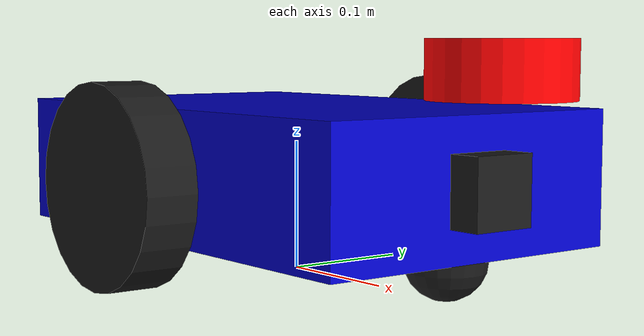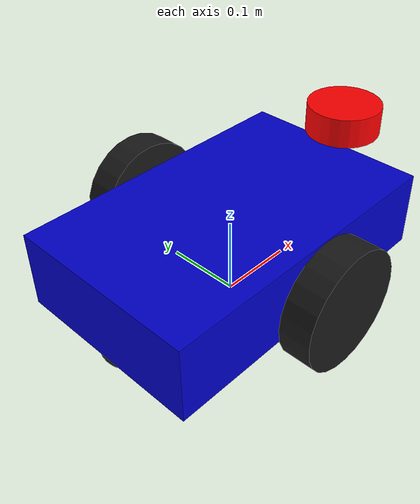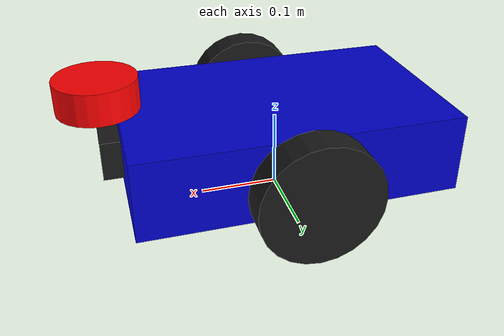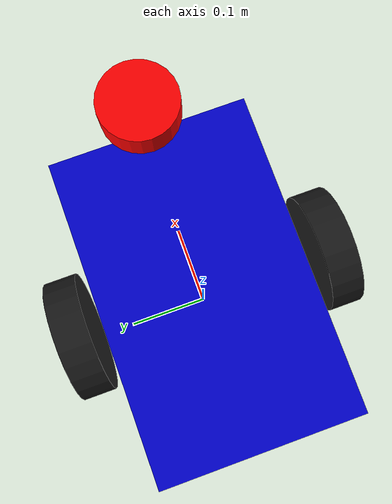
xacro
<?xml version="1.0"?>
<robot xmlns:xacro="http://www.ros.org/wiki/xacro" name="diffbot">

  <xacro:property name="wheel_radius" value="0.075"/>
  <xacro:property name="wheel_separation" value="0.32"/>

  <!-- base_footprint 用于2D导航常见基座帧 -->
  <link name="base_footprint"/>
  <joint name="base_footprint_joint" type="fixed">
    <parent link="base_link"/>
    <child link="base_footprint"/>
    <origin xyz="0 0 0" rpy="0 0 0"/>
  </joint>

  <!-- Base Link (车体) -->
  <link name="base_link">
    <inertial>
      <origin xyz="0 0 0.08" rpy="0 0 0"/>
      <mass value="8.0"/>
      <inertia ixx="0.12" ixy="0" ixz="0" iyy="0.20" iyz="0" izz="0.25"/>
    </inertial>
    <visual>
      <origin xyz="0 0 0.08" rpy="0 0 0"/>
      <geometry>
        <box size="0.40 0.25 0.10"/>
      </geometry>
      <material name="blue">
        <color rgba="0.0 0.0 0.8 1.0"/>
      </material>
    </visual>
    <collision>
      <origin xyz="0 0 0.08" rpy="0 0 0"/>
      <geometry>
        <box size="0.40 0.25 0.10"/>
      </geometry>
    </collision>
  </link>

  <!-- Left Wheel (左轮) -->
  <link name="left_wheel_link">
    <inertial>
      <origin xyz="0 0 0" rpy="0 0 0"/>
      <mass value="0.6"/>
      <inertia ixx="0.001" ixy="0" ixz="0" iyy="0.001" iyz="0" izz="0.001"/>
    </inertial>
    <visual>
      <origin xyz="0 0 0" rpy="${pi/2} 0 0"/>
      <geometry>
        <cylinder radius="${wheel_radius}" length="0.04"/>
      </geometry>
      <material name="black">
        <color rgba="0.1 0.1 0.1 1.0"/>
      </material>
    </visual>
    <collision>
      <origin xyz="0 0 0" rpy="${pi/2} 0 0"/>
      <geometry>
        <cylinder radius="${wheel_radius}" length="0.04"/>
      </geometry>
    </collision>
  </link>

  <!-- Right Wheel (右轮) -->
  <link name="right_wheel_link">
    <inertial>
      <origin xyz="0 0 0" rpy="0 0 0"/>
      <mass value="0.6"/>
      <inertia ixx="0.001" ixy="0" ixz="0" iyy="0.001" iyz="0" izz="0.001"/>
    </inertial>
    <visual>
      <origin xyz="0 0 0" rpy="${pi/2} 0 0"/>
      <geometry>
        <cylinder radius="${wheel_radius}" length="0.04"/>
      </geometry>
      <material name="black">
        <color rgba="0.1 0.1 0.1 1.0"/>
      </material>
    </visual>
    <collision>
      <origin xyz="0 0 0" rpy="${pi/2} 0 0"/>
      <geometry>
        <cylinder radius="${wheel_radius}" length="0.04"/>
      </geometry>
    </collision>
  </link>

  <!-- Joints (关节连接) -->
  <joint name="left_wheel_joint" type="continuous">
    <parent link="base_link"/>
    <child link="left_wheel_link"/>
    <origin xyz="0 ${wheel_separation/2} ${wheel_radius}" rpy="0 0 0"/>
    <axis xyz="0 1 0"/>
  </joint>

  <joint name="right_wheel_joint" type="continuous">
    <parent link="base_link"/>
    <child link="right_wheel_link"/>
    <origin xyz="0 -${wheel_separation/2} ${wheel_radius}" rpy="0 0 0"/>
    <axis xyz="0 1 0"/>
  </joint>

  <link name="front_caster_link">
    <inertial>
      <origin xyz="0 0 0" rpy="0 0 0"/>
      <mass value="0.2"/>
      <inertia ixx="0.0003" ixy="0" ixz="0" iyy="0.0003" iyz="0" izz="0.0003"/>
    </inertial>
    <visual>
      <geometry>
        <sphere radius="0.03"/>
      </geometry>
      <material name="black"/>
    </visual>
    <collision>
      <geometry>
        <sphere radius="0.03"/>
      </geometry>
    </collision>
  </link>

  <joint name="front_caster_joint" type="fixed">
    <parent link="base_link"/>
    <child link="front_caster_link"/>
    <origin xyz="0.17 0 0.03" rpy="0 0 0"/>
  </joint>

  <link name="rear_caster_link">
    <inertial>
      <origin xyz="0 0 0" rpy="0 0 0"/>
      <mass value="0.2"/>
      <inertia ixx="0.0003" ixy="0" ixz="0" iyy="0.0003" iyz="0" izz="0.0003"/>
    </inertial>
    <visual>
      <geometry>
        <sphere radius="0.03"/>
      </geometry>
      <material name="black"/>
    </visual>
    <collision>
      <geometry>
        <sphere radius="0.03"/>
      </geometry>
    </collision>
  </link>

  <joint name="rear_caster_joint" type="fixed">
    <parent link="base_link"/>
    <child link="rear_caster_link"/>
    <origin xyz="-0.17 0 0.03" rpy="0 0 0"/>
  </joint>

  <!-- Gazebo 材质与摩擦力 -->
  <gazebo reference="base_link">
    <material>Gazebo/Blue</material>
  </gazebo>
  <gazebo reference="left_wheel_link">
    <material>Gazebo/Black</material>
    <mu1>0.7</mu1>
    <mu2>0.7</mu2>
    <slip1>0.02</slip1>
    <slip2>0.02</slip2>
  </gazebo>
  <gazebo reference="right_wheel_link">
    <material>Gazebo/Black</material>
    <mu1>0.7</mu1>
    <mu2>0.7</mu2>
    <slip1>0.02</slip1>
    <slip2>0.02</slip2>
  </gazebo>
  <gazebo reference="front_caster_link">
    <material>Gazebo/Black</material>
    <mu1>0.02</mu1>
    <mu2>0.02</mu2>
  </gazebo>
  <gazebo reference="rear_caster_link">
    <material>Gazebo/Black</material>
    <mu1>0.02</mu1>
    <mu2>0.02</mu2>
  </gazebo>

   <gazebo>
    <plugin name="joint_state_publisher" filename="libgazebo_ros_joint_state_publisher.so">
      <update_rate>100</update_rate>
      <joint_name>left_wheel_joint</joint_name>
      <joint_name>right_wheel_joint</joint_name>
    </plugin>
    <plugin name="diff_drive" filename="libgazebo_ros_diff_drive.so">
      <ros>
        <remapping>/tf:=tf</remapping>
        <remapping>/tf_static:=tf_static</remapping>
        <remapping>cmd_vel:=cmd_vel</remapping>
        <remapping>odom:=odom</remapping>
      </ros>

      <update_rate>100</update_rate>

      <!-- wheels -->
      <left_joint>left_wheel_joint</left_joint>
      <right_joint>right_wheel_joint</right_joint>

      <!-- kinematics -->
      <wheel_separation>0.32</wheel_separation>
      <wheel_diameter>0.15</wheel_diameter>

      <!-- limits -->
      <max_wheel_torque>40</max_wheel_torque>
      <max_wheel_acceleration>18.0</max_wheel_acceleration>

      <!-- output -->
      <publish_odom>true</publish_odom>
      <publish_odom_tf>true</publish_odom_tf>
      <publish_wheel_tf>false</publish_wheel_tf>

      <odometry_frame>odom</odometry_frame>
      <robot_base_frame>base_link</robot_base_frame>
    </plugin>
  </gazebo>
  <!-- 2D LiDAR (雷达) -->
  <link name="laser">
    <visual>
      <geometry>
        <cylinder radius="0.05" length="0.04"/>
      </geometry>
      <material name="red">
        <color rgba="1 0 0 1"/>
      </material>
    </visual>
    <collision>
      <geometry>
        <cylinder radius="0.05" length="0.04"/>
      </geometry>
    </collision>
    <inertial>
      <origin xyz="0 0 0" rpy="0 0 0"/>
      <mass value="0.1"/>
      <inertia ixx="0.0001" ixy="0" ixz="0" iyy="0.0001" iyz="0" izz="0.0001"/>
    </inertial>
  </link>

  <joint name="laser_joint" type="fixed">
    <parent link="base_link"/>
    <child link="laser"/>
    <origin xyz="0.22 0 0.16" rpy="0 0 0"/>
  </joint>

  <gazebo reference="laser">
    <material>Gazebo/Red</material>
    <sensor name="laser" type="ray">
      <pose> 0 0 0 0 0 0 </pose>
      <visualize>true</visualize>
      <update_rate>10</update_rate>
      <ray>
        <scan>
          <horizontal>
            <samples>360</samples>
            <min_angle>-3.14</min_angle>
            <max_angle>3.14</max_angle>
          </horizontal>
        </scan>
        <range>
          <min>0.1</min>
          <max>30.0</max>
        </range>
      </ray>
      <plugin name="laser_controller" filename="libgazebo_ros_ray_sensor.so">
        <ros>
          <argument>~/out:=scan</argument>
        </ros>
        <output_type>sensor_msgs/LaserScan</output_type>
        <frame_name>laser</frame_name>
      </plugin>
    </sensor>
  </gazebo>

  <!-- Camera (相机) -->
  <link name="camera_link">
    <visual>
      <geometry>
        <box size="0.05 0.05 0.05"/>
      </geometry>
      <material name="black"/>
    </visual>
  </link>

  <joint name="camera_joint" type="fixed">
    <parent link="base_link"/>
    <child link="camera_link"/>
    <origin xyz="0.2 0 0.08" rpy="0 0 0"/>
  </joint>

  <!-- IMU (姿态稳定用) -->
  <link name="imu_link">
    <inertial>
      <origin xyz="0 0 0" rpy="0 0 0"/>
      <mass value="0.05"/>
      <inertia ixx="1e-5" ixy="0" ixz="0" iyy="1e-5" iyz="0" izz="1e-5"/>
    </inertial>
    <visual>
      <geometry>
        <box size="0.02 0.02 0.01"/>
      </geometry>
      <material name="black"/>
    </visual>
  </link>

  <joint name="imu_joint" type="fixed">
    <parent link="base_link"/>
    <child link="imu_link"/>
    <origin xyz="0.0 0.0 0.12" rpy="0 0 0"/>
  </joint>

  <gazebo reference="imu_link">
    <sensor name="imu_sensor" type="imu">
      <always_on>true</always_on>
      <update_rate>100</update_rate>
      <visualize>false</visualize>
      <plugin name="imu_controller" filename="libgazebo_ros_imu_sensor.so">
        <ros>
          <argument>~/out:=imu/data</argument>
        </ros>
        <frame_name>imu_link</frame_name>
      </plugin>
    </sensor>
  </gazebo>

  <gazebo reference="camera_link">
    <material>Gazebo/Black</material>
    <sensor name="camera" type="camera">
      <pose> 0 0 0 0 0 0 </pose>
      <visualize>true</visualize>
      <update_rate>10</update_rate>
      <camera>
        <horizontal_fov>1.089</horizontal_fov>
        <image>
          <format>R8G8B8</format>
          <width>640</width>
          <height>480</height>
        </image>
        <clip>
          <near>0.05</near>
          <far>8.0</far>
        </clip>
      </camera>
      <plugin name="camera_controller" filename="libgazebo_ros_camera.so">
        <frame_name>camera_link</frame_name>
      </plugin>
    </sensor>
  </gazebo>
</robot>
